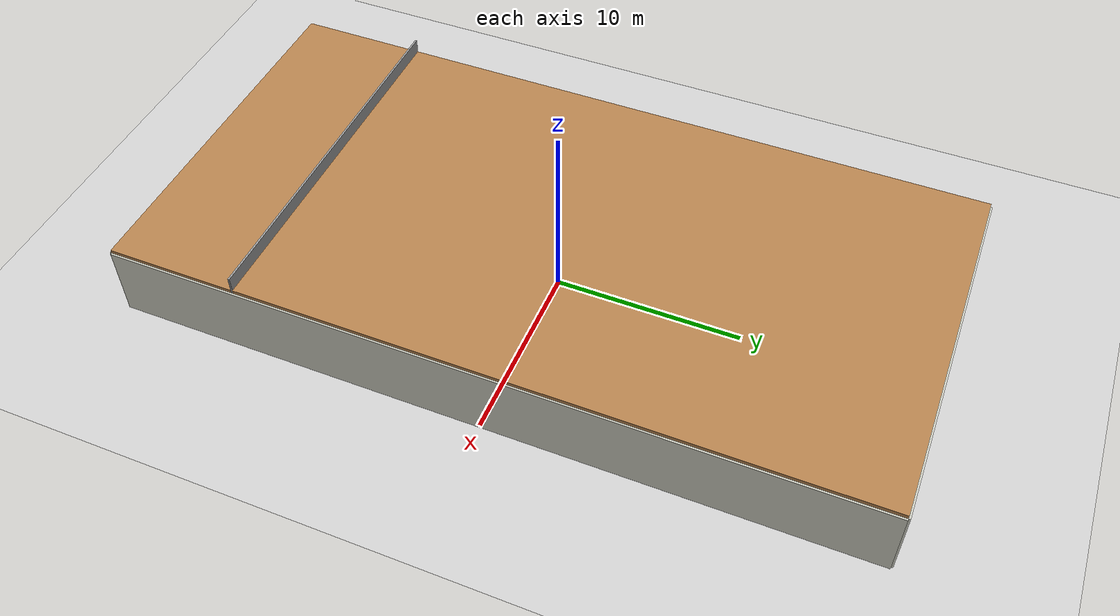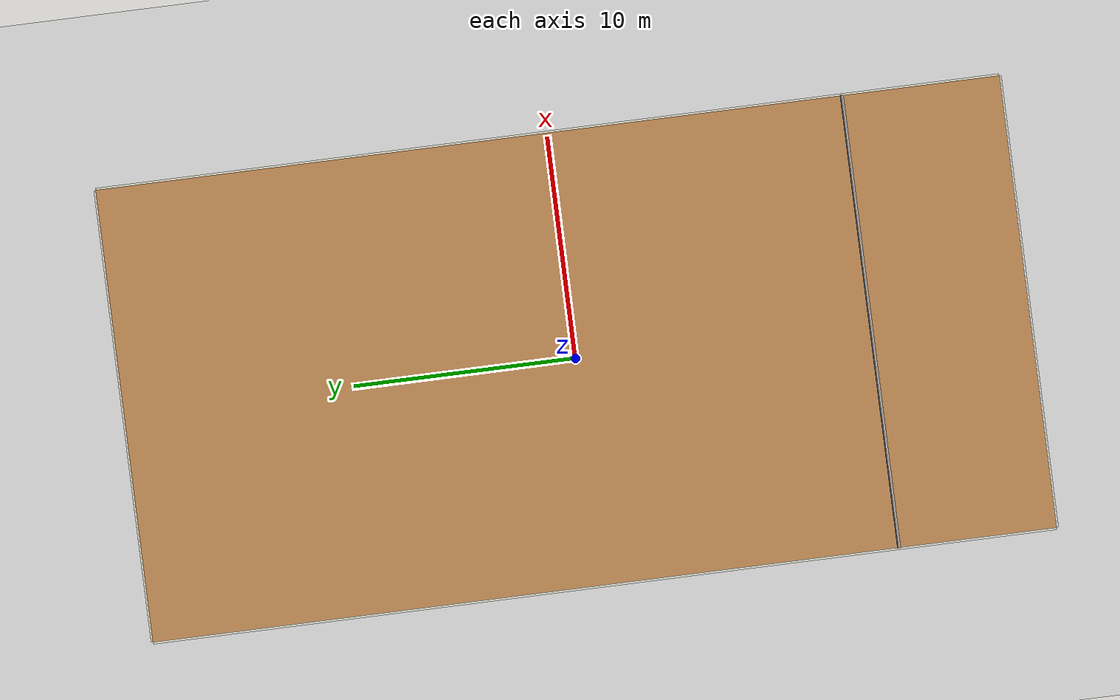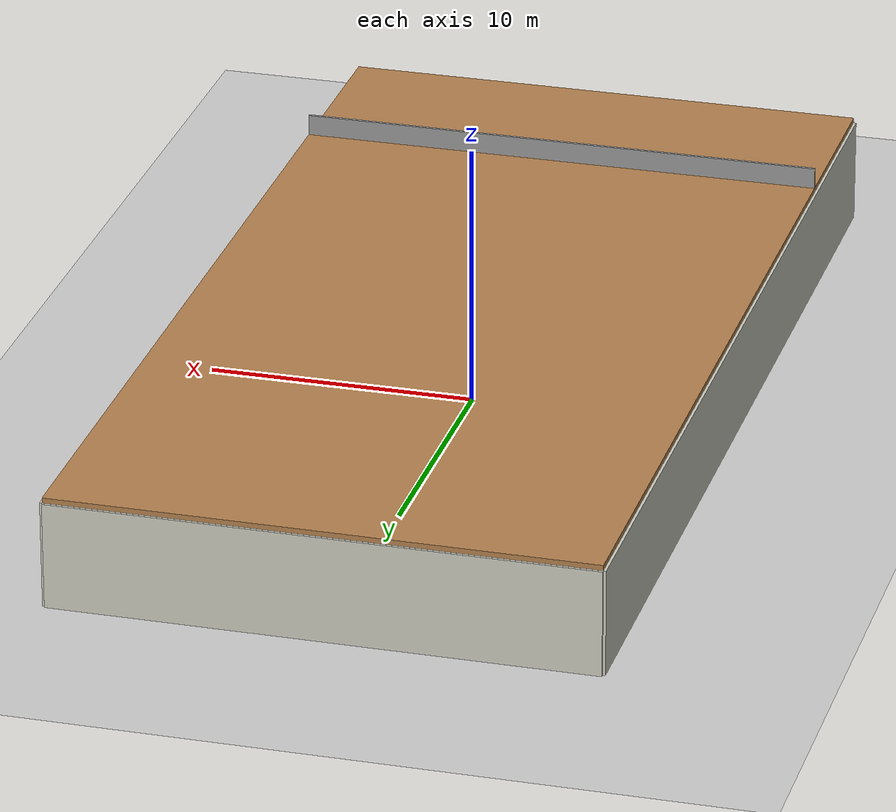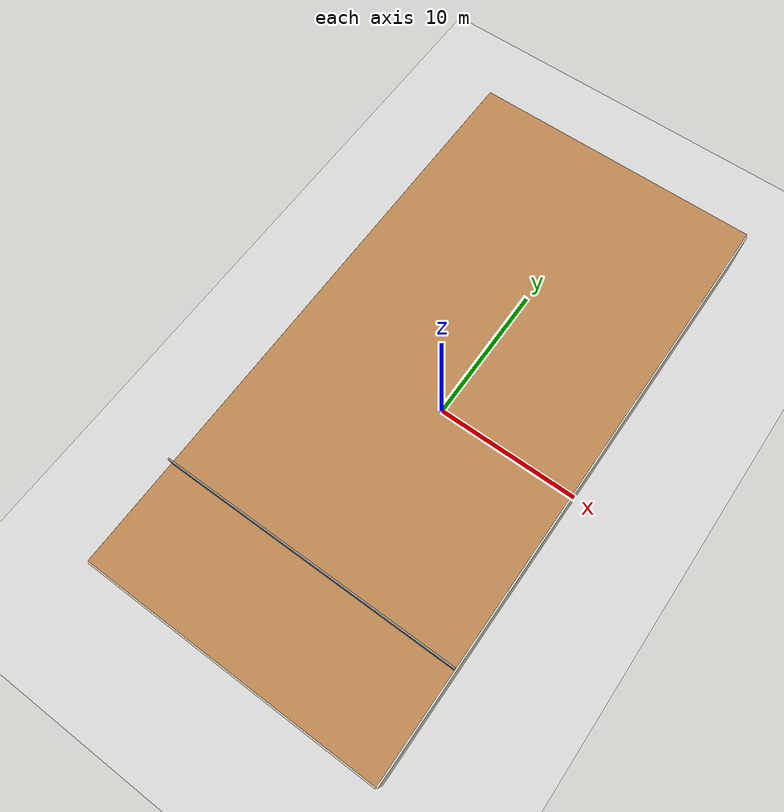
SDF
<sdf version="1.4">
 <world name="default">
  <light name="sun" type="directional">
   <pose>0 0 10 0 -0 0</pose>
   <diffuse>0.8 0.8 0.8 1</diffuse>
   <specular>0.2 0.2 0.2 1</specular>
   <attenuation>
    <range>1000</range>
    <constant>0.9</constant>
    <linear>0.01</linear>
    <quadratic>0.001</quadratic>
   </attenuation>
   <direction>-0.5 0.1 -0.9</direction>
  </light>
  <model name="ground_plane">
   <static>1</static>
   <link name="link">
    <collision name="collision">
     <geometry><plane><normal>0 0 1</normal><size>100 100</size></plane></geometry>
     <surface><friction><ode><mu>100</mu><mu2>50</mu2></ode></friction></surface>
    </collision>
    <visual name="visual">
     <cast_shadows>0</cast_shadows>
     <geometry><plane><normal>0 0 1</normal><size>100 100</size></plane></geometry>
     <material>
      <script><uri>file://media/materials/scripts/gazebo.material</uri><name>Gazebo/Grey</name></script>
     </material>
    </visual>
    <velocity_decay><linear>0</linear><angular>0</angular></velocity_decay>
   </link>
  </model>
  <physics type="ode">
   <max_step_size>0.001</max_step_size>
   <real_time_factor>1</real_time_factor>
   <real_time_update_rate>1000</real_time_update_rate>
   <gravity>0 0 -9.8</gravity>
  </physics>
  <scene><ambient>0.4 0.4 0.4 1</ambient><background>0.7 0.7 0.7 1</background><shadows>1</shadows></scene>
  <model name="challenge_w1_0">
   <static>1</static>
   <link name="Wall_South">
    <collision name="Wall_South_Collision">
     <geometry><box><size>20 0.2 4</size></box></geometry>
     <pose>0 0 2 0 -0 0</pose>
    </collision>
    <visual name="Wall_South_Visual">
     <pose>0 0 2 0 -0 0</pose>
     <geometry><box><size>20 0.2 4</size></box></geometry>
     <material>
      <script><uri>file://media/materials/scripts/gazebo.material</uri><name>Gazebo/PaintedWall</name></script>
     </material>
    </visual>
    <velocity_decay><linear>0</linear><angular>0</angular></velocity_decay>
    <pose>0 -20 0 0 -0 0</pose>
   </link>
   <link name="Wall_East">
    <collision name="Wall_21_Collision">
     <geometry><box><size>40 0.2 4</size></box></geometry>
     <pose>0 0 2 0 -0 0</pose>
    </collision>
    <visual name="Wall_21_Visual">
     <pose>0 0 2 0 -0 0</pose>
     <geometry><box><size>40 0.2 4</size></box></geometry>
     <material>
      <script><uri>file://media/materials/scripts/gazebo.material</uri><name>Gazebo/PaintedWall</name></script>
     </material>
    </visual>
    <velocity_decay><linear>0</linear><angular>0</angular></velocity_decay>
    <pose>10 0 0 0 -0 1.5708</pose>
   </link>
   <link name="Wall_North">
    <collision name="Wall_22_Collision">
     <geometry><box><size>20 0.2 4</size></box></geometry>
     <pose>0 0 2 0 -0 0</pose>
    </collision>
    <visual name="Wall_22_Visual">
     <pose>0 0 2 0 -0 0</pose>
     <geometry><box><size>20 0.2 4</size></box></geometry>
     <material>
      <script><uri>file://media/materials/scripts/gazebo.material</uri><name>Gazebo/PaintedWall</name></script>
     </material>
    </visual>
    <velocity_decay><linear>0</linear><angular>0</angular></velocity_decay>
    <pose>0 20 0 0 -0 3.14159</pose>
   </link>
   <link name="Wall_West">
    <collision name="Wall_23_Collision">
     <geometry><box><size>40 0.2 4</size></box></geometry>
     <pose>0 0 2 0 -0 0</pose>
    </collision>
    <visual name="Wall_23_Visual">
     <pose>0 0 2 0 -0 0</pose>
     <geometry><box><size>40 0.2 4</size></box></geometry>
     <material>
      <script><uri>file://media/materials/scripts/gazebo.material</uri><name>Gazebo/PaintedWall</name></script>
     </material>
    </visual>
    <velocity_decay><linear>0</linear><angular>0</angular></velocity_decay>
    <pose>-10 0 0 0 0 -1.5708</pose>
   </link>
   <static>1</static>
  </model>
  <model name="asphalt_plane">
   <static>1</static>
   <link name="link">
    <collision name="collision"><geometry><box><size>20 20 0.1</size></box></geometry></collision>
    <visual name="visual">
     <cast_shadows>0</cast_shadows>
     <geometry><box><size>20 20 0.1</size></box></geometry>
     <material>
      <script>
       <uri>model://asphalt_plane/materials/scripts</uri>
       <uri>model://asphalt_plane/materials/textures</uri>
       <name>vrc/asphalt</name>
      </script>
     </material>
    </visual>
    <velocity_decay><linear>0</linear><angular>0</angular></velocity_decay>
   </link>
   <pose>0 -10 0 0 -0 0</pose>
  </model>
  <model name="asphalt_plane_0">
   <static>1</static>
   <link name="link">
    <collision name="collision"><geometry><box><size>20 20 0.1</size></box></geometry></collision>
    <visual name="visual">
     <cast_shadows>0</cast_shadows>
     <geometry><box><size>20 20 0.1</size></box></geometry>
     <material>
      <script>
       <uri>model://asphalt_plane/materials/scripts</uri>
       <uri>model://asphalt_plane/materials/textures</uri>
       <name>vrc/asphalt</name>
      </script>
     </material>
    </visual>
    <velocity_decay><linear>0</linear><angular>0</angular></velocity_decay>
   </link>
   <pose>0 10 0 0 -0 0</pose>
  </model>
  <model name="roof">
   <static>1</static>
   <pose>0 0 4.1 0 -0 0</pose>
   <link name="link">
    <collision name="collision"><geometry><box><size>20 40 0.2</size></box></geometry></collision>
    <visual name="visual">
     <geometry><box><size>20 40 0.2</size></box></geometry>
     <material>
      <script><uri>file://media/materials/scripts/gazebo.material</uri><name>Gazebo/Wood</name></script>
     </material>
    </visual>
    <velocity_decay><linear>0</linear><angular>0</angular></velocity_decay>
   </link>
  </model>
  <light name="sun_se" type="diffuse">
   <pose>5 -9 2 0 -0 0</pose>
   <diffuse>0.8 0.8 0.8 1</diffuse>
   <specular>0.2 0.2 0.2 1</specular>
   <attenuation>
    <range>1000</range>
    <constant>0.9</constant>
    <linear>0.01</linear>
    <quadratic>0.001</quadratic>
   </attenuation>
   <direction>-0.5 0.1 -0.9</direction>
  </light>
  <light name="sun_sw" type="diffuse">
   <pose>-5 -9 2 0 -0 0</pose>
   <diffuse>0.8 0.8 0.8 1</diffuse>
   <specular>0.2 0.2 0.2 1</specular>
   <attenuation>
    <range>1000</range>
    <constant>0.9</constant>
    <linear>0.01</linear>
    <quadratic>0.001</quadratic>
   </attenuation>
   <direction>-0.5 0.1 -0.9</direction>
  </light>
  <light name="sun_ce" type="diffuse">
   <pose>5 -0 2 0 -0 0</pose>
   <diffuse>0.8 0.8 0.8 1</diffuse>
   <specular>0.2 0.2 0.2 1</specular>
   <attenuation>
    <range>1000</range>
    <constant>0.9</constant>
    <linear>0.01</linear>
    <quadratic>0.001</quadratic>
   </attenuation>
   <direction>-0.5 0.1 -0.9</direction>
  </light>
  <light name="sun_cw" type="diffuse">
   <pose>-5 -0 2 0 -0 0</pose>
   <diffuse>0.8 0.8 0.8 1</diffuse>
   <specular>0.2 0.2 0.2 1</specular>
   <attenuation>
    <range>1000</range>
    <constant>0.9</constant>
    <linear>0.01</linear>
    <quadratic>0.001</quadratic>
   </attenuation>
   <direction>-0.5 0.1 -0.9</direction>
  </light>
  <light name="sun_ne" type="diffuse">
   <pose>5 9 2 0 -0 0</pose>
   <diffuse>0.8 0.8 0.8 1</diffuse>
   <specular>0.2 0.2 0.2 1</specular>
   <attenuation>
    <range>1000</range>
    <constant>0.9</constant>
    <linear>0.01</linear>
    <quadratic>0.001</quadratic>
   </attenuation>
   <direction>-0.5 0.1 -0.9</direction>
  </light>
  <light name="sun_nw" type="diffuse">
   <pose>-5 9 2 0 -0 0</pose>
   <diffuse>0.8 0.8 0.8 1</diffuse>
   <specular>0.2 0.2 0.2 1</specular>
   <attenuation>
    <range>1000</range>
    <constant>0.9</constant>
    <linear>0.01</linear>
    <quadratic>0.001</quadratic>
   </attenuation>
   <direction>-0.5 0.1 -0.9</direction>
  </light>
  <model name="wall">
   <static>1</static>
   <pose>2.5 0 2 0 -0 0</pose>
   <link name="link">
    <collision name="collision"><geometry><box><size>15 1 4</size></box></geometry></collision>
    <visual name="visual">
     <geometry><box><size>15 1 4</size></box></geometry>
     <material>
      <script><uri>file://media/materials/scripts/gazebo.material</uri><name>Gazebo/PaintedWall</name></script>
     </material>
    </visual>
    <velocity_decay><linear>0</linear><angular>0</angular></velocity_decay>
   </link>
  </model>
  <model name="block">
   <static>1</static>
   <pose>0 13 1.0 -0 -0 -0</pose>
   <link name="link">
    <collision name="collision"><geometry><box><size>20 1 1.5</size></box></geometry></collision>
    <visual name="visual">
     <geometry><box><size>20 1 1.5</size></box></geometry>
     <material>
      <script><uri>file://media/materials/scripts/gazebo.material</uri><name>Gazebo/Wood</name></script>
     </material>
    </visual>
    <velocity_decay><linear>0</linear><angular>0</angular></velocity_decay>
   </link>
  </model>
  <model name="ceiling">
   <static>1</static>
   <pose>0 -13 3.75 0 -0 0</pose>
   <link name="link">
    <collision name="collision"><geometry><box><size>20 0.1 2.5</size></box></geometry></collision>
    <visual name="visual">
     <geometry><box><size>20 0.1 2.5</size></box></geometry>
     <material>
      <script><uri>file://media/materials/scripts/gazebo.material</uri><name>Gazebo/Grey</name></script>
     </material>
    </visual>
    <velocity_decay><linear>0</linear><angular>0</angular></velocity_decay>
    <gravity>0</gravity>
   </link>
  </model>
  <light name="startlight1" type="directional">
   <pose>5 -17 2 0 0 0</pose>
   <diffuse>0.8 0.8 0.8 1</diffuse>
   <specular>0.2 0.2 0.2 1</specular>
   <attenuation>
    <range>1000</range>
    <constant>0.9</constant>
    <linear>0.01</linear>
    <quadratic>0.001</quadratic>
   </attenuation>
   <direction>0.1 0 -0.9</direction>
  </light>
  <light name="startlight2" type="directional">
   <pose>-5 -17 2 0 0 0</pose>
   <diffuse>0.8 0.8 0.8 1</diffuse>
   <specular>0.2 0.2 0.2 1</specular>
   <attenuation>
    <range>1000</range>
    <constant>0.9</constant>
    <linear>0.01</linear>
    <quadratic>0.001</quadratic>
   </attenuation>
   <direction>0.1 0 -0.9</direction>
  </light>
 </world>
</sdf>
